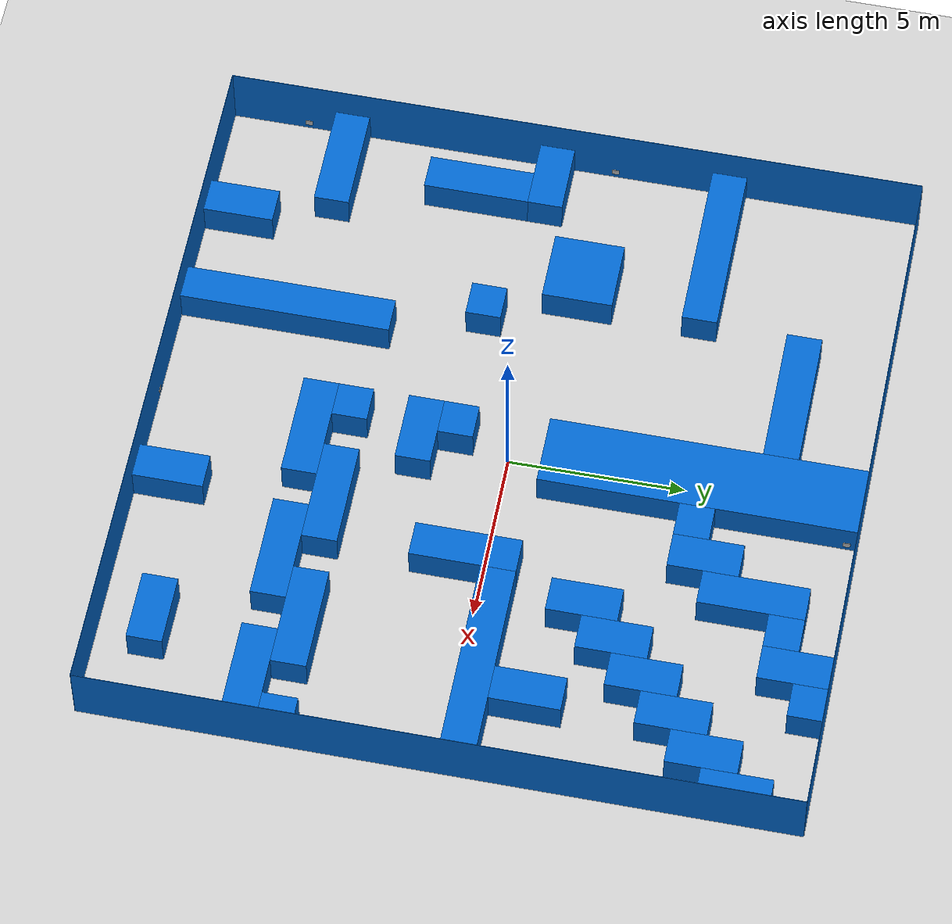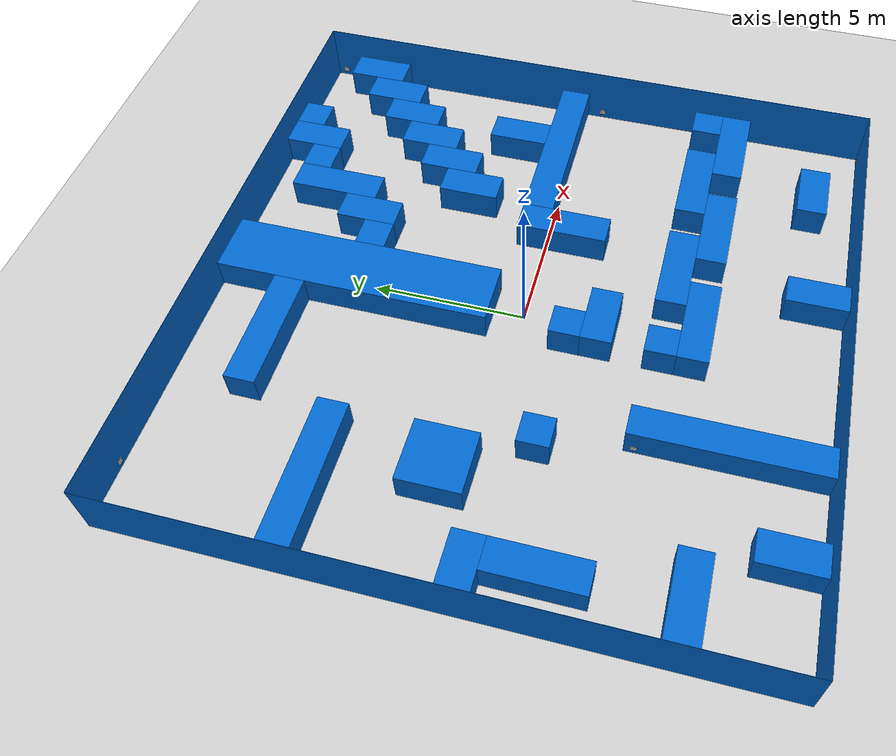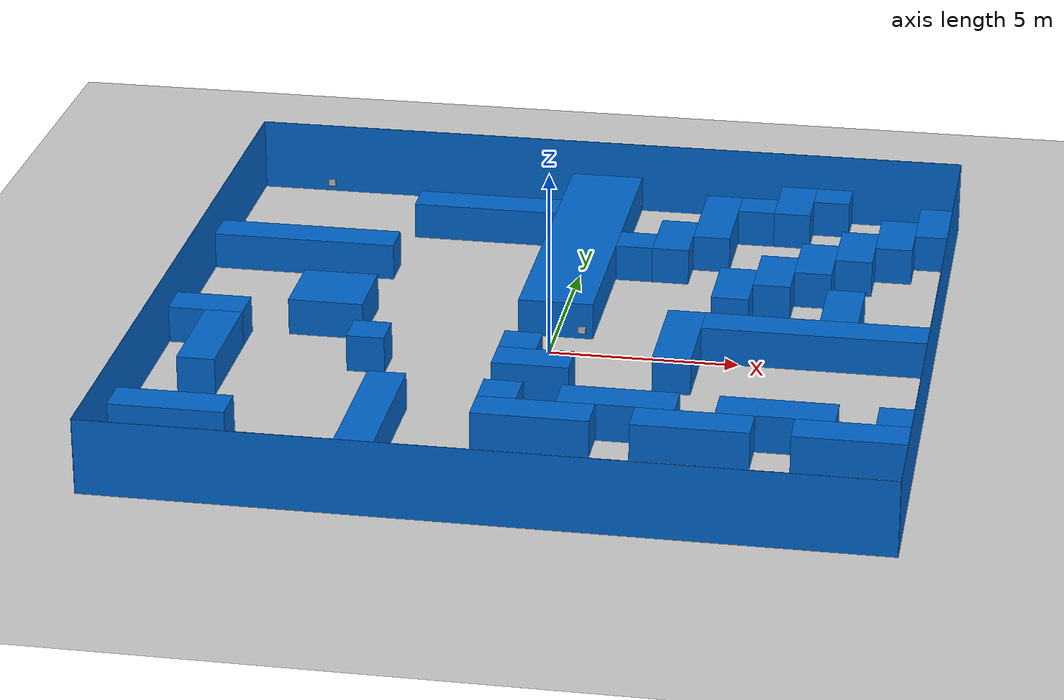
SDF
<?xml version="1.0"?>
<sdf version='1.7'>
    <world name='maze'>
        <light name='sun' type='directional'>
            <cast_shadows>0</cast_shadows>
            <pose>0 0 10 0 -0 0</pose>
            <diffuse>0.8 0.8 0.8 1</diffuse>
            <specular>0.2 0.2 0.2 1</specular>
            <attenuation>
                <range>1000</range>
                <constant>0.9</constant>
                <linear>0.01</linear>
                <quadratic>0.001</quadratic>
            </attenuation>
            <direction>-0.5 0.1 -0.9</direction>
            <spot>
                <inner_angle>0</inner_angle>
                <outer_angle>0</outer_angle>
                <falloff>0</falloff>
            </spot>
        </light>
        <model name='ground_plane'>
            <static>1</static>
            <link name='link'>
                <collision name='collision'>
                    <geometry>
                        <plane>
                            <normal>0 0 1</normal>
                            <size>100 100</size>
                        </plane>
                    </geometry>
                    <surface>
                        <friction>
                            <ode>
                                <mu>100</mu>
                                <mu2>50</mu2>
                            </ode>
                            <torsional>
                                <ode/>
                            </torsional>
                        </friction>
                        <contact>
                            <ode/>
                        </contact>
                        <bounce/>
                    </surface>
                    <max_contacts>10</max_contacts>
                </collision>
                <visual name='visual'>
                    <cast_shadows>0</cast_shadows>
                    <geometry>
                        <plane>
                            <normal>0 0 1</normal>
                            <size>100 100</size>
                        </plane>
                    </geometry>
                    <material>
                        <script>
                            <uri>file://media/materials/scripts/gazebo.material</uri>
                            <name>Gazebo/Grey</name>
                        </script>
                    </material>
                </visual>
                <self_collide>0</self_collide>
                <enable_wind>0</enable_wind>
                <kinematic>0</kinematic>
            </link>
        </model>
        <gravity>0 0 -9.8</gravity>
        <magnetic_field>6e-06 2.3e-05 -4.2e-05</magnetic_field>
        <atmosphere type='adiabatic'/>
        <physics type='ode'>
            <max_step_size>0.001</max_step_size>
            <real_time_factor>1</real_time_factor>
            <real_time_update_rate>1000</real_time_update_rate>
        </physics>
        <scene>
            <ambient>0.4 0.4 0.4 1</ambient>
            <background>0.7 0.7 0.7 1</background>
            <shadows>0</shadows>
        </scene>
        <audio>
            <device>default</device>
        </audio>
        <wind/>
        <spherical_coordinates>
            <surface_model>EARTH_WGS84</surface_model>
            <latitude_deg>0</latitude_deg>
            <longitude_deg>0</longitude_deg>
            <elevation>0</elevation>
            <heading_deg>0</heading_deg>
        </spherical_coordinates>
        <gui fullscreen='0'>
            <camera name='user_camera'>
                <pose>8.0 0.0 30.0 0.0 1.5707 1.5707</pose>
                <view_controller>orbit</view_controller>
                <projection_type>perspective</projection_type>
            </camera>
        </gui>

        <model name='border'>
            <pose>0 0 1 0 0 0</pose>
            <static>true</static>
            <link name='wall1'>
                <pose>-10.005 0 0 0 0 0</pose>
                <static>true</static>
                <collision name='wall1_collision'>
                    <geometry>
                        <box>
                            <size>0.01 20 2</size>
                        </box>
                    </geometry>
                </collision>
                <visual name='wall1_visual'>
                    <geometry>
                        <box>
                            <size>0.01 20 2</size>
                        </box>
                    </geometry>
                    <material>
                        <ambient>0.1 0.1 0.1 1</ambient>
                        <diffuse>0 0.4 0.8 1</diffuse>
                        <specular>0 0.01 0.05 1</specular>
                    </material>
                </visual>
            </link>
            <link name='wall2'>
                <pose>10.005 0 0 0 0 0</pose>
                <static>true</static>
                <collision name='wall2_collision'>
                    <geometry>
                        <box>
                            <size>0.01 20 2</size>
                        </box>
                    </geometry>
                </collision>
                <visual name='wall2_visual'>
                    <geometry>
                        <box>
                            <size>0.01 20 2</size>
                        </box>
                    </geometry>
                    <material>
                        <ambient>0.1 0.1 0.1 1</ambient>
                        <diffuse>0 0.4 0.8 1</diffuse>
                        <specular>0 0.01 0.05 1</specular>
                    </material>
                </visual>
            </link>
            <link name='wall3'>
                <pose>0 10.005 0 0 0 0</pose>
                <static>true</static>
                <collision name='wall3_collision'>
                    <geometry>
                        <box>
                            <size>20 0.01 2</size>
                        </box>
                    </geometry>
                </collision>
                <visual name='wall3_visual'>
                    <geometry>
                        <box>
                            <size>20 0.01 2</size>
                        </box>
                    </geometry>
                    <material>
                        <ambient>0.1 0.1 0.1 1</ambient>
                        <diffuse>0 0.4 0.8 1</diffuse>
                        <specular>0 0.01 0.05 1</specular>
                    </material>
                </visual>
            </link>
            <link name='wall4'>
                <pose>0 -10.005 0 0 0 0</pose>
                <static>true</static>
                <collision name='wall4_collision'>
                    <geometry>
                        <box>
                            <size>20 0.01 2</size>
                        </box>
                    </geometry>
                    <material>
                        <ambient>0.1 0.1 0.1 1</ambient>
                        <diffuse>0 0.4 0.8 1</diffuse>
                        <specular>0 0.01 0.05 1</specular>
                    </material>
                </collision>
                <visual name='wall4_visual'>
                    <geometry>
                        <box>
                            <size>20 0.01 2</size>
                        </box>
                    </geometry>
                    <material>
                        <ambient>0.1 0.1 0.1 1</ambient>
                        <diffuse>0 0.4 0.8 1</diffuse>
                        <specular>0 0.01 0.05 1</specular>
                    </material>
                </visual>
            </link>
        </model>

        <model name='obstacles'>
            <pose>0 0 0.5 0 0 0</pose>
            <static>true</static>
            <link name='wall1'>
                <pose>-6.5 -9 0 0 0 0</pose>
                <static>true</static>
                <collision name='wall1_collision'>
                    <geometry>
                        <box>
                            <size>1 2 1</size>
                        </box>
                    </geometry>
                </collision>
                <visual name='wall1_visual'>
                    <geometry>
                        <box>
                            <size>1 2 1</size>
                        </box>
                    </geometry>
                    <material>
                        <ambient>0.1 0.1 0.1 1</ambient>
                        <diffuse>0 0.4 0.8 1</diffuse>
                        <specular>0 0.01 0.05 1</specular>
                    </material>
                </visual>
            </link>

            <link name='wall2'>
                <pose>-8.5 -6.5 0 0 0 0</pose>
                <static>true</static>
                <collision name='wall2_collision'>
                    <geometry>
                        <box>
                            <size>3 1 1</size>
                        </box>
                    </geometry>
                </collision>
                <visual name='wall2_visual'>
                    <geometry>
                        <box>
                            <size>3 1 1</size>
                        </box>
                    </geometry>
                    <material>
                        <ambient>0.1 0.1 0.1 1</ambient>
                        <diffuse>0 0.4 0.8 1</diffuse>
                        <specular>0 0.01 0.05 1</specular>
                    </material>
                </visual>
            </link>

            <link name='wall3'>
                <pose>-3.5 -7 0 0 0 0</pose>
                <static>true</static>
                <collision name='wall3_collision'>
                    <geometry>
                        <box>
                            <size>1 6 1</size>
                        </box>
                    </geometry>
                </collision>
                <visual name='wall3_visual'>
                    <geometry>
                        <box>
                            <size>1 6 1</size>
                        </box>
                    </geometry>
                    <material>
                        <ambient>0.1 0.1 0.1 1</ambient>
                        <diffuse>0 0.4 0.8 1</diffuse>
                        <specular>0 0.01 0.05 1</specular>
                    </material>
                </visual>
            </link>

            <link name='wall4'>
                <pose>2.5 -9 0 0 0 0</pose>
                <static>true</static>
                <collision name='wall4_collision'>
                    <geometry>
                        <box>
                            <size>1 2 1</size>
                        </box>
                    </geometry>
                </collision>
                <visual name='wall4_visual'>
                    <geometry>
                        <box>
                            <size>1 2 1</size>
                        </box>
                    </geometry>
                    <material>
                        <ambient>0.1 0.1 0.1 1</ambient>
                        <diffuse>0 0.4 0.8 1</diffuse>
                        <specular>0 0.01 0.05 1</specular>
                    </material>
                </visual>
            </link>

            <link name='wall5'>
                <pose>7 -8.5 0 0 0 0</pose>
                <static>true</static>
                <collision name='wall5_collision'>
                    <geometry>
                        <box>
                            <size>2 1 1</size>
                        </box>
                    </geometry>
                </collision>
                <visual name='wall5_visual'>
                    <geometry>
                        <box>
                            <size>2 1 1</size>
                        </box>
                    </geometry>
                    <material>
                        <ambient>0.1 0.1 0.1 1</ambient>
                        <diffuse>0 0.4 0.8 1</diffuse>
                        <specular>0 0.01 0.05 1</specular>
                    </material>
                </visual>
            </link>

            <link name='wall6'>
                <pose>-9 -0.5 0 0 0 0</pose>
                <static>true</static>
                <collision name='wall6_collision'>
                    <geometry>
                        <box>
                            <size>2 1 1</size>
                        </box>
                    </geometry>
                </collision>
                <visual name='wall6_visual'>
                    <geometry>
                        <box>
                            <size>2 1 1</size>
                        </box>
                    </geometry>
                    <material>
                        <ambient>0.1 0.1 0.1 1</ambient>
                        <diffuse>0 0.4 0.8 1</diffuse>
                        <specular>0 0.01 0.05 1</specular>
                    </material>
                </visual>
            </link>

            <link name='wall7'>
                <pose>-8.5 -2.5 0 0 0 0</pose>
                <static>true</static>
                <collision name='wall7_collision'>
                    <geometry>
                        <box>
                            <size>1 3 1</size>
                        </box>
                    </geometry>
                </collision>
                <visual name='wall7_visual'>
                    <geometry>
                        <box>
                            <size>1 3 1</size>
                        </box>
                    </geometry>
                    <material>
                        <ambient>0.1 0.1 0.1 1</ambient>
                        <diffuse>0 0.4 0.8 1</diffuse>
                        <specular>0 0.01 0.05 1</specular>
                    </material>
                </visual>
            </link>

            <link name='wall8'>
                <pose>-4.5 -1.5 0 0 0 0</pose>
                <static>true</static>
                <collision name='wall8_collision'>
                    <geometry>
                        <box>
                            <size>1 1 1</size>
                        </box>
                    </geometry>
                </collision>
                <visual name='wall8_visual'>
                    <geometry>
                        <box>
                            <size>1 1 1</size>
                        </box>
                    </geometry>
                    <material>
                        <ambient>0.1 0.1 0.1 1</ambient>
                        <diffuse>0 0.4 0.8 1</diffuse>
                        <specular>0 0.01 0.05 1</specular>
                    </material>
                </visual>
            </link>

            <link name='wall9'>
                <pose>-6 1 0 0 0 0</pose>
                <static>true</static>
                <collision name='wall9_collision'>
                    <geometry>
                        <box>
                            <size>2 2 1</size>
                        </box>
                    </geometry>
                </collision>
                <visual name='wall9_visual'>
                    <geometry>
                        <box>
                            <size>2 2 1</size>
                        </box>
                    </geometry>
                    <material>
                        <ambient>0.1 0.1 0.1 1</ambient>
                        <diffuse>0 0.4 0.8 1</diffuse>
                        <specular>0 0.01 0.05 1</specular>
                    </material>
                </visual>
            </link>

            <link name='wall10'>
                <pose>-7.5 4.5 0 0 0 0</pose>
                <static>true</static>
                <collision name='wall10_collision'>
                    <geometry>
                        <box>
                            <size>5 1 1</size>
                        </box>
                    </geometry>
                </collision>
                <visual name='wall10_visual'>
                    <geometry>
                        <box>
                            <size>5 1 1</size>
                        </box>
                    </geometry>
                    <material>
                        <ambient>0.1 0.1 0.1 1</ambient>
                        <diffuse>0 0.4 0.8 1</diffuse>
                        <specular>0 0.01 0.05 1</specular>
                    </material>
                </visual>
            </link>

            <link name='wall11'>
                <pose>-3 7.5 0 0 0 0</pose>
                <static>true</static>
                <collision name='wall11_collision'>
                    <geometry>
                        <box>
                            <size>4 1 1</size>
                        </box>
                    </geometry>
                </collision>
                <visual name='wall11_visual'>
                    <geometry>
                        <box>
                            <size>4 1 1</size>
                        </box>
                    </geometry>
                    <material>
                        <ambient>0.1 0.1 0.1 1</ambient>
                        <diffuse>0 0.4 0.8 1</diffuse>
                        <specular>0 0.01 0.05 1</specular>
                    </material>
                </visual>
            </link>
            <link name='wall12'>
                <pose>0 5.5 0 0 0 0</pose>
                <static>true</static>
                <collision name='wall12_collision'>
                    <geometry>
                        <box>
                            <size>2 9 1</size>
                        </box>
                    </geometry>
                </collision>
                <visual name='wall12_visual'>
                    <geometry>
                        <box>
                            <size>2 9 1</size>
                        </box>
                    </geometry>
                    <material>
                        <ambient>0.1 0.1 0.1 1</ambient>
                        <diffuse>0 0.4 0.8 1</diffuse>
                        <specular>0 0.01 0.05 1</specular>
                    </material>
                </visual>
            </link>

            <link name='wall13'>
                <pose>0 -2.5 0 0 0 0</pose>
                <static>true</static>
                <collision name='wall13_collision'>
                    <geometry>
                        <box>
                            <size>2 1 1</size>
                        </box>
                    </geometry>
                </collision>
                <visual name='wall13_visual'>
                    <geometry>
                        <box>
                            <size>2 1 1</size>
                        </box>
                    </geometry>
                    <material>
                        <ambient>0.1 0.1 0.1 1</ambient>
                        <diffuse>0 0.4 0.8 1</diffuse>
                        <specular>0 0.01 0.05 1</specular>
                    </material>
                </visual>
            </link>

            <link name='wall14'>
                <pose>-0.5 -1.5 0 0 0 0</pose>
                <static>true</static>
                <collision name='wall14_collision'>
                    <geometry>
                        <box>
                            <size>1 1 1</size>
                        </box>
                    </geometry>
                </collision>
                <visual name='wall14_visual'>
                    <geometry>
                        <box>
                            <size>1 1 1</size>
                        </box>
                    </geometry>
                    <material>
                        <ambient>0.1 0.1 0.1 1</ambient>
                        <diffuse>0 0.4 0.8 1</diffuse>
                        <specular>0 0.01 0.05 1</specular>
                    </material>
                </visual>
            </link>

            <link name='wall15'>
                <pose>-0.5 -4.5 0 0 0 0</pose>
                <static>true</static>
                <collision name='wall15_collision'>
                    <geometry>
                        <box>
                            <size>1 1 1</size>
                        </box>
                    </geometry>
                </collision>
                <visual name='wall15_visual'>
                    <geometry>
                        <box>
                            <size>1 1 1</size>
                        </box>
                    </geometry>
                    <material>
                        <ambient>0.1 0.1 0.1 1</ambient>
                        <diffuse>0 0.4 0.8 1</diffuse>
                        <specular>0 0.01 0.05 1</specular>
                    </material>
                </visual>
            </link>

            <link name='wall16'>
                <pose>0.5 -5.5 0 0 0 0</pose>
                <static>true</static>
                <collision name='wall16_collision'>
                    <geometry>
                        <box>
                            <size>3 1 1</size>
                        </box>
                    </geometry>
                </collision>
                <visual name='wall16_visual'>
                    <geometry>
                        <box>
                            <size>3 1 1</size>
                        </box>
                    </geometry>
                    <material>
                        <ambient>0.1 0.1 0.1 1</ambient>
                        <diffuse>0 0.4 0.8 1</diffuse>
                        <specular>0 0.01 0.05 1</specular>
                    </material>
                </visual>
            </link>

            <link name='wall17'>
                <pose>2.5 -4.5 0 0 0 0</pose>
                <static>true</static>
                <collision name='wall17_collision'>
                    <geometry>
                        <box>
                            <size>3 1 1</size>
                        </box>
                    </geometry>
                </collision>
                <visual name='wall17_visual'>
                    <geometry>
                        <box>
                            <size>3 1 1</size>
                        </box>
                    </geometry>
                    <material>
                        <ambient>0.1 0.1 0.1 1</ambient>
                        <diffuse>0 0.4 0.8 1</diffuse>
                        <specular>0 0.01 0.05 1</specular>
                    </material>
                </visual>
            </link>

            <link name='wall18'>
                <pose>4.5 -5.5 0 0 0 0</pose>
                <static>true</static>
                <collision name='wall18_collision'>
                    <geometry>
                        <box>
                            <size>3 1 1</size>
                        </box>
                    </geometry>
                </collision>
                <visual name='wall18_visual'>
                    <geometry>
                        <box>
                            <size>3 1 1</size>
                        </box>
                    </geometry>
                    <material>
                        <ambient>0.1 0.1 0.1 1</ambient>
                        <diffuse>0 0.4 0.8 1</diffuse>
                        <specular>0 0.01 0.05 1</specular>
                    </material>
                </visual>
            </link>

            <link name='wall19'>
                <pose>6.5 -4.5 0 0 0 0</pose>
                <static>true</static>
                <collision name='wall19_collision'>
                    <geometry>
                        <box>
                            <size>3 1 1</size>
                        </box>
                    </geometry>
                </collision>
                <visual name='wall19_visual'>
                    <geometry>
                        <box>
                            <size>3 1 1</size>
                        </box>
                    </geometry>
                    <material>
                        <ambient>0.1 0.1 0.1 1</ambient>
                        <diffuse>0 0.4 0.8 1</diffuse>
                        <specular>0 0.01 0.05 1</specular>
                    </material>
                </visual>
            </link>

            <link name='wall20'>
                <pose>8.5 -5.5 0 0 0 0</pose>
                <static>true</static>
                <collision name='wall20_collision'>
                    <geometry>
                        <box>
                            <size>3 1 1</size>
                        </box>
                    </geometry>
                </collision>
                <visual name='wall20_visual'>
                    <geometry>
                        <box>
                            <size>3 1 1</size>
                        </box>
                    </geometry>
                    <material>
                        <ambient>0.1 0.1 0.1 1</ambient>
                        <diffuse>0 0.4 0.8 1</diffuse>
                        <specular>0 0.01 0.05 1</specular>
                    </material>
                </visual>
            </link>

            <link name='wall21'>
                <pose>9.5 -4.5 0 0 0 0</pose>
                <static>true</static>
                <collision name='wall21_collision'>
                    <geometry>
                        <box>
                            <size>1 1 1</size>
                        </box>
                    </geometry>
                </collision>
                <visual name='wall21_visual'>
                    <geometry>
                        <box>
                            <size>1 1 1</size>
                        </box>
                    </geometry>
                    <material>
                        <ambient>0.1 0.1 0.1 1</ambient>
                        <diffuse>0 0.4 0.8 1</diffuse>
                        <specular>0 0.01 0.05 1</specular>
                    </material>
                </visual>
            </link>

            <link name='wall22'>
                <pose>3.5 -0.5 0 0 0 0</pose>
                <static>true</static>
                <collision name='wall22_collision'>
                    <geometry>
                        <box>
                            <size>1 3 1</size>
                        </box>
                    </geometry>
                </collision>
                <visual name='wall22_visual'>
                    <geometry>
                        <box>
                            <size>1 3 1</size>
                        </box>
                    </geometry>
                    <material>
                        <ambient>0.1 0.1 0.1 1</ambient>
                        <diffuse>0 0.4 0.8 1</diffuse>
                        <specular>0 0.01 0.05 1</specular>
                    </material>
                </visual>
            </link>

            <link name='wall23'>
                <pose>7 0.5 0 0 0 0</pose>
                <static>true</static>
                <collision name='wall23_collision'>
                    <geometry>
                        <box>
                            <size>6 1 1</size>
                        </box>
                    </geometry>
                </collision>
                <visual name='wall23_visual'>
                    <geometry>
                        <box>
                            <size>6 1 1</size>
                        </box>
                    </geometry>
                    <material>
                        <ambient>0.1 0.1 0.1 1</ambient>
                        <diffuse>0 0.4 0.8 1</diffuse>
                        <specular>0 0.01 0.05 1</specular>
                    </material>
                </visual>
            </link>

            <link name='wall24'>
                <pose>7.5 2 0 0 0 0</pose>
                <static>true</static>
                <collision name='wall24_collision'>
                    <geometry>
                        <box>
                            <size>1 2 1</size>
                        </box>
                    </geometry>
                </collision>
                <visual name='wall24_visual'>
                    <geometry>
                        <box>
                            <size>1 2 1</size>
                        </box>
                    </geometry>
                    <material>
                        <ambient>0.1 0.1 0.1 1</ambient>
                        <diffuse>0 0.4 0.8 1</diffuse>
                        <specular>0 0.01 0.05 1</specular>
                    </material>
                </visual>
            </link>

            <link name='wall25'>
                <pose>1.5 5.5 0 0 0 0</pose>
                <static>true</static>
                <collision name='wall25_collision'>
                    <geometry>
                        <box>
                            <size>1 1 1</size>
                        </box>
                    </geometry>
                </collision>
                <visual name='wall25_visual'>
                    <geometry>
                        <box>
                            <size>1 1 1</size>
                        </box>
                    </geometry>
                    <material>
                        <ambient>0.1 0.1 0.1 1</ambient>
                        <diffuse>0 0.4 0.8 1</diffuse>
                        <specular>0 0.01 0.05 1</specular>
                    </material>
                </visual>
            </link>

            <link name='wall26'>
                <pose>2.5 6 0 0 0 0</pose>
                <static>true</static>
                <collision name='wall26_collision'>
                    <geometry>
                        <box>
                            <size>1 2 1</size>
                        </box>
                    </geometry>
                </collision>
                <visual name='wall26_visual'>
                    <geometry>
                        <box>
                            <size>1 2 1</size>
                        </box>
                    </geometry>
                    <material>
                        <ambient>0.1 0.1 0.1 1</ambient>
                        <diffuse>0 0.4 0.8 1</diffuse>
                        <specular>0 0.01 0.05 1</specular>
                    </material>
                </visual>
            </link>

            <link name='wall27'>
                <pose>3.5 7.5 0 0 0 0</pose>
                <static>true</static>
                <collision name='wall27_collision'>
                    <geometry>
                        <box>
                            <size>1 3 1</size>
                        </box>
                    </geometry>
                </collision>
                <visual name='wall27_visual'>
                    <geometry>
                        <box>
                            <size>1 3 1</size>
                        </box>
                    </geometry>
                    <material>
                        <ambient>0.1 0.1 0.1 1</ambient>
                        <diffuse>0 0.4 0.8 1</diffuse>
                        <specular>0 0.01 0.05 1</specular>
                    </material>
                </visual>
            </link>

            <link name='wall28'>
                <pose>4.5 8.5 0 0 0 0</pose>
                <static>true</static>
                <collision name='wall28_collision'>
                    <geometry>
                        <box>
                            <size>1 1 1</size>
                        </box>
                    </geometry>
                </collision>
                <visual name='wall28_visual'>
                    <geometry>
                        <box>
                            <size>1 1 1</size>
                        </box>
                    </geometry>
                    <material>
                        <ambient>0.1 0.1 0.1 1</ambient>
                        <diffuse>0 0.4 0.8 1</diffuse>
                        <specular>0 0.01 0.05 1</specular>
                    </material>
                </visual>
            </link>

            <link name='wall29'>
                <pose>5.5 9 0 0 0 0</pose>
                <static>true</static>
                <collision name='wall29_collision'>
                    <geometry>
                        <box>
                            <size>1 2 1</size>
                        </box>
                    </geometry>
                </collision>
                <visual name='wall29_visual'>
                    <geometry>
                        <box>
                            <size>1 2 1</size>
                        </box>
                    </geometry>
                    <material>
                        <ambient>0.1 0.1 0.1 1</ambient>
                        <diffuse>0 0.4 0.8 1</diffuse>
                        <specular>0 0.01 0.05 1</specular>
                    </material>
                </visual>
            </link>

            <link name='wall30'>
                <pose>6.5 9.5 0 0 0 0</pose>
                <static>true</static>
                <collision name='wall30_collision'>
                    <geometry>
                        <box>
                            <size>1 1 1</size>
                        </box>
                    </geometry>
                </collision>
                <visual name='wall30_visual'>
                    <geometry>
                        <box>
                            <size>1 1 1</size>
                        </box>
                    </geometry>
                    <material>
                        <ambient>0.1 0.1 0.1 1</ambient>
                        <diffuse>0 0.4 0.8 1</diffuse>
                        <specular>0 0.01 0.05 1</specular>
                    </material>
                </visual>
            </link>

            <link name='wall31'>
                <pose>4.5 3 0 0 0 0</pose>
                <static>true</static>
                <collision name='wall31_collision'>
                    <geometry>
                        <box>
                            <size>1 2 1</size>
                        </box>
                    </geometry>
                </collision>
                <visual name='wall31_visual'>
                    <geometry>
                        <box>
                            <size>1 2 1</size>
                        </box>
                    </geometry>
                    <material>
                        <ambient>0.1 0.1 0.1 1</ambient>
                        <diffuse>0 0.4 0.8 1</diffuse>
                        <specular>0 0.01 0.05 1</specular>
                    </material>
                </visual>
            </link>

            <link name='wall32'>
                <pose>5.5 4 0 0 0 0</pose>
                <static>true</static>
                <collision name='wall32_collision'>
                    <geometry>
                        <box>
                            <size>1 2 1</size>
                        </box>
                    </geometry>
                </collision>
                <visual name='wall32_visual'>
                    <geometry>
                        <box>
                            <size>1 2 1</size>
                        </box>
                    </geometry>
                    <material>
                        <ambient>0.1 0.1 0.1 1</ambient>
                        <diffuse>0 0.4 0.8 1</diffuse>
                        <specular>0 0.01 0.05 1</specular>
                    </material>
                </visual>
            </link>

            <link name='wall33'>
                <pose>6.5 5 0 0 0 0</pose>
                <static>true</static>
                <collision name='wall33_collision'>
                    <geometry>
                        <box>
                            <size>1 2 1</size>
                        </box>
                    </geometry>
                </collision>
                <visual name='wall33_visual'>
                    <geometry>
                        <box>
                            <size>1 2 1</size>
                        </box>
                    </geometry>
                    <material>
                        <ambient>0.1 0.1 0.1 1</ambient>
                        <diffuse>0 0.4 0.8 1</diffuse>
                        <specular>0 0.01 0.05 1</specular>
                    </material>
                </visual>
            </link>

            <link name='wall34'>
                <pose>7.5 6 0 0 0 0</pose>
                <static>true</static>
                <collision name='wall34_collision'>
                    <geometry>
                        <box>
                            <size>1 2 1</size>
                        </box>
                    </geometry>
                </collision>
                <visual name='wall34_visual'>
                    <geometry>
                        <box>
                            <size>1 2 1</size>
                        </box>
                    </geometry>
                    <material>
                        <ambient>0.1 0.1 0.1 1</ambient>
                        <diffuse>0 0.4 0.8 1</diffuse>
                        <specular>0 0.01 0.05 1</specular>
                    </material>
                </visual>
            </link>

            <link name='wall35'>
                <pose>8.5 7 0 0 0 0</pose>
                <static>true</static>
                <collision name='wall35_collision'>
                    <geometry>
                        <box>
                            <size>1 2 1</size>
                        </box>
                    </geometry>
                </collision>
                <visual name='wall35_visual'>
                    <geometry>
                        <box>
                            <size>1 2 1</size>
                        </box>
                    </geometry>
                    <material>
                        <ambient>0.1 0.1 0.1 1</ambient>
                        <diffuse>0 0.4 0.8 1</diffuse>
                        <specular>0 0.01 0.05 1</specular>
                    </material>
                </visual>
            </link>

            <link name='wall36'>
                <pose>9.5 8 0 0 0 0</pose>
                <static>true</static>
                <collision name='wall36_collision'>
                    <geometry>
                        <box>
                            <size>1 2 1</size>
                        </box>
                    </geometry>
                </collision>
                <visual name='wall36_visual'>
                    <geometry>
                        <box>
                            <size>1 2 1</size>
                        </box>
                    </geometry>
                    <material>
                        <ambient>0.1 0.1 0.1 1</ambient>
                        <diffuse>0 0.4 0.8 1</diffuse>
                        <specular>0 0.01 0.05 1</specular>
                    </material>
                </visual>
            </link>
        </model>

        <!-- AprilTags (tag36h11), generated by scripts/generate_apriltag_maze.py -->
        <model name='Apriltag36_11_00000'>
            <static>1</static>
            <pose>-8.050 9.994 0.240 0.000000 1.570796 -1.570796</pose>
            <link name='main'>
                <visual name='main_Visual'>
                    <cast_shadows>0</cast_shadows>
                    <geometry>
                        <box>
                            <size>0.2 0.2 0.005</size>
                        </box>
                    </geometry>
                    <material>
                        <script>
                            <uri>model://Apriltag36_11_00000/materials/scripts</uri>
                            <uri>model://Apriltag36_11_00000/materials/textures</uri>
                            <name>Apriltag36_11_00000</name>
                        </script>
                    </material>
                </visual>
            </link>
        </model>
        <model name='Apriltag36_11_00001'>
            <static>1</static>
            <pose>1.006 9.700 0.240 0.000000 1.570796 0.000000</pose>
            <link name='main'>
                <visual name='main_Visual'>
                    <cast_shadows>0</cast_shadows>
                    <geometry>
                        <box>
                            <size>0.2 0.2 0.005</size>
                        </box>
                    </geometry>
                    <material>
                        <script>
                            <uri>model://Apriltag36_11_00001/materials/scripts</uri>
                            <uri>model://Apriltag36_11_00001/materials/textures</uri>
                            <name>Apriltag36_11_00001</name>
                        </script>
                    </material>
                </visual>
            </link>
        </model>
        <model name='Apriltag36_11_00002'>
            <static>1</static>
            <pose>9.994 9.700 0.240 0.000000 1.570796 3.141593</pose>
            <link name='main'>
                <visual name='main_Visual'>
                    <cast_shadows>0</cast_shadows>
                    <geometry>
                        <box>
                            <size>0.2 0.2 0.005</size>
                        </box>
                    </geometry>
                    <material>
                        <script>
                            <uri>model://Apriltag36_11_00002/materials/scripts</uri>
                            <uri>model://Apriltag36_11_00002/materials/textures</uri>
                            <name>Apriltag36_11_00002</name>
                        </script>
                    </material>
                </visual>
            </link>
        </model>
        <model name='Apriltag36_11_00003'>
            <static>1</static>
            <pose>-9.994 1.200 0.240 0.000000 1.570796 0.000000</pose>
            <link name='main'>
                <visual name='main_Visual'>
                    <cast_shadows>0</cast_shadows>
                    <geometry>
                        <box>
                            <size>0.2 0.2 0.005</size>
                        </box>
                    </geometry>
                    <material>
                        <script>
                            <uri>model://Apriltag36_11_00003/materials/scripts</uri>
                            <uri>model://Apriltag36_11_00003/materials/textures</uri>
                            <name>Apriltag36_11_00003</name>
                        </script>
                    </material>
                </visual>
            </link>
        </model>
        <model name='Apriltag36_11_00004'>
            <static>1</static>
            <pose>0.700 0.994 0.240 0.000000 1.570796 -1.570796</pose>
            <link name='main'>
                <visual name='main_Visual'>
                    <cast_shadows>0</cast_shadows>
                    <geometry>
                        <box>
                            <size>0.2 0.2 0.005</size>
                        </box>
                    </geometry>
                    <material>
                        <script>
                            <uri>model://Apriltag36_11_00004/materials/scripts</uri>
                            <uri>model://Apriltag36_11_00004/materials/textures</uri>
                            <name>Apriltag36_11_00004</name>
                        </script>
                    </material>
                </visual>
            </link>
        </model>
        <model name='Apriltag36_11_00005'>
            <static>1</static>
            <pose>9.994 -0.550 0.240 0.000000 1.570796 3.141593</pose>
            <link name='main'>
                <visual name='main_Visual'>
                    <cast_shadows>0</cast_shadows>
                    <geometry>
                        <box>
                            <size>0.2 0.2 0.005</size>
                        </box>
                    </geometry>
                    <material>
                        <script>
                            <uri>model://Apriltag36_11_00005/materials/scripts</uri>
                            <uri>model://Apriltag36_11_00005/materials/textures</uri>
                            <name>Apriltag36_11_00005</name>
                        </script>
                    </material>
                </visual>
            </link>
        </model>
        <model name='Apriltag36_11_00006'>
            <static>1</static>
            <pose>-4.006 -4.300 0.240 0.000000 1.570796 3.141593</pose>
            <link name='main'>
                <visual name='main_Visual'>
                    <cast_shadows>0</cast_shadows>
                    <geometry>
                        <box>
                            <size>0.2 0.2 0.005</size>
                        </box>
                    </geometry>
                    <material>
                        <script>
                            <uri>model://Apriltag36_11_00006/materials/scripts</uri>
                            <uri>model://Apriltag36_11_00006/materials/textures</uri>
                            <name>Apriltag36_11_00006</name>
                        </script>
                    </material>
                </visual>
            </link>
        </model>
        <model name='Apriltag36_11_00007'>
            <static>1</static>
            <pose>4.700 -4.994 0.240 0.000000 1.570796 1.570796</pose>
            <link name='main'>
                <visual name='main_Visual'>
                    <cast_shadows>0</cast_shadows>
                    <geometry>
                        <box>
                            <size>0.2 0.2 0.005</size>
                        </box>
                    </geometry>
                    <material>
                        <script>
                            <uri>model://Apriltag36_11_00007/materials/scripts</uri>
                            <uri>model://Apriltag36_11_00007/materials/textures</uri>
                            <name>Apriltag36_11_00007</name>
                        </script>
                    </material>
                </visual>
            </link>
        </model>
        <model name='Apriltag36_11_00008'>
            <static>1</static>
            <pose>-9.994 -7.800 0.240 0.000000 1.570796 0.000000</pose>
            <link name='main'>
                <visual name='main_Visual'>
                    <cast_shadows>0</cast_shadows>
                    <geometry>
                        <box>
                            <size>0.2 0.2 0.005</size>
                        </box>
                    </geometry>
                    <material>
                        <script>
                            <uri>model://Apriltag36_11_00008/materials/scripts</uri>
                            <uri>model://Apriltag36_11_00008/materials/textures</uri>
                            <name>Apriltag36_11_00008</name>
                        </script>
                    </material>
                </visual>
            </link>
        </model>
        <model name='Apriltag36_11_00009'>
            <static>1</static>
            <pose>-0.300 -9.994 0.240 0.000000 1.570796 1.570796</pose>
            <link name='main'>
                <visual name='main_Visual'>
                    <cast_shadows>0</cast_shadows>
                    <geometry>
                        <box>
                            <size>0.2 0.2 0.005</size>
                        </box>
                    </geometry>
                    <material>
                        <script>
                            <uri>model://Apriltag36_11_00009/materials/scripts</uri>
                            <uri>model://Apriltag36_11_00009/materials/textures</uri>
                            <name>Apriltag36_11_00009</name>
                        </script>
                    </material>
                </visual>
            </link>
        </model>
        <model name='Apriltag36_11_00010'>
            <static>1</static>
            <pose>9.700 -9.994 0.240 0.000000 1.570796 1.570796</pose>
            <link name='main'>
                <visual name='main_Visual'>
                    <cast_shadows>0</cast_shadows>
                    <geometry>
                        <box>
                            <size>0.2 0.2 0.005</size>
                        </box>
                    </geometry>
                    <material>
                        <script>
                            <uri>model://Apriltag36_11_00010/materials/scripts</uri>
                            <uri>model://Apriltag36_11_00010/materials/textures</uri>
                            <name>Apriltag36_11_00010</name>
                        </script>
                    </material>
                </visual>
            </link>
        </model>
    </world>
</sdf>
